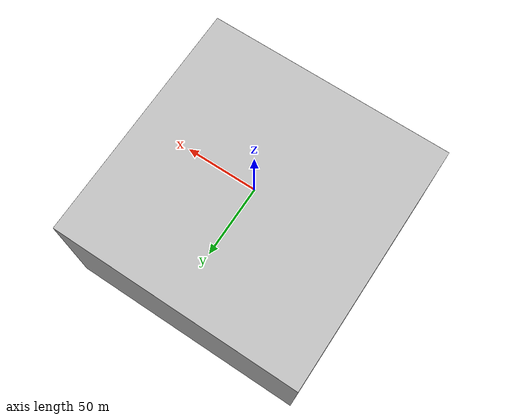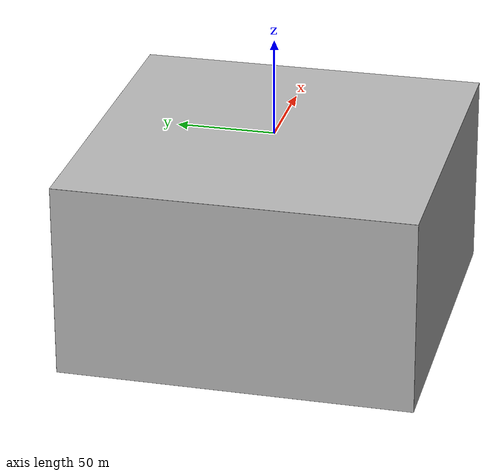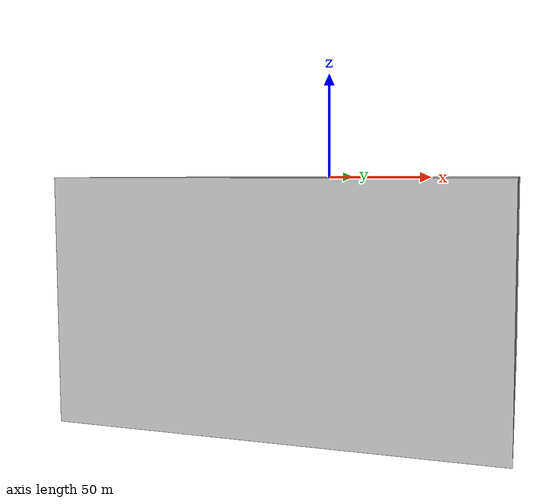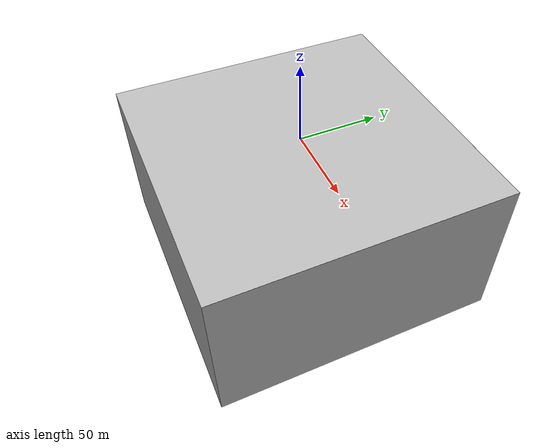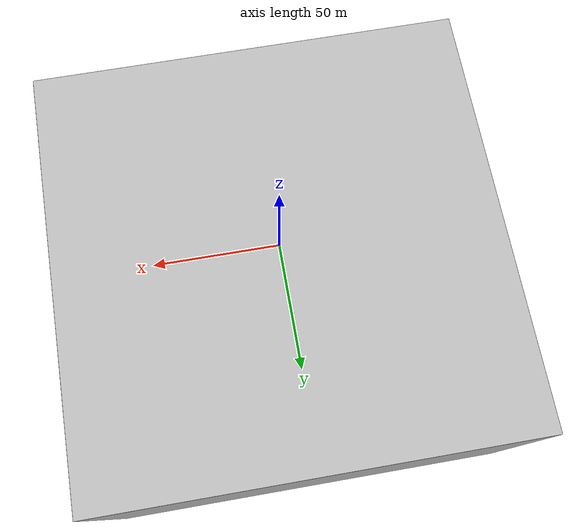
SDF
<?xml version="1.0" ?>
<!-- Ocean dimensions = 180 x 180 x 100 (depth rating = 100m) -->
<sdf version="1.5">
  <model name="auv_rl_ocean">
    <static>true</static>
    <link name="auv_rl_ocean">
        <visual name="surface">
            <pose>0 0 0 0 0 0</pose>
            <cast_shadows>false</cast_shadows>
            <geometry>
                <box>
                    <size>180 180 0.1</size>
                </box>
            </geometry>
            <material>
                <script>
                    <uri>file://auv_rl_ocean/materials/scripts/water.material</uri>
                    <name>auv_rl/StaticDeepWater</name>
                </script>
            </material>
        </visual>

        <visual name="bottom">
        <pose>0 0 -100.0 0 0 0</pose>
        <geometry>
          <box>
            <size>180 180 0.1</size>
          </box>
        </geometry>
        <material>
          <script>
            <uri>file://auv_rl_ocean/materials/scripts/water.material</uri>
            <name>auv_rl/SeaWall</name>
          </script>
        </material>
      </visual>

      <visual name="north_wall">
        <pose>0 90 -50.0 0 0 0</pose>
        <geometry>
          <box>
            <size>180 0.1 100</size>
          </box>
        </geometry>
        <material>
          <script>
            <uri>file://auv_rl_ocean/materials/scripts/water.material</uri>
            <name>auv_rl/SeaWall</name>
          </script>
        </material>
      </visual>

      <visual name="south_wall">
        <pose>0 -90 -50.0 0 0 0</pose>
        <geometry>
          <box>
            <size>180 0.1 100</size>
          </box>
        </geometry>
        <material>
          <script>
            <uri>file://auv_rl_ocean/materials/scripts/water.material</uri>
            <name>auv_rl/SeaWall</name>
          </script>
        </material>
      </visual>

      <visual name="east_wall">
        <pose>90 0 -50.0 0 0 0</pose>
        <geometry>
          <box>
            <size>0.1 180 100</size>
          </box>
        </geometry>
        <material>
          <script>
            <uri>file://auv_rl_ocean/materials/scripts/water.material</uri>
            <name>auv_rl/SeaWall</name>
          </script>
        </material>
      </visual>

      <visual name="west_wall">
        <pose>-90 0 -50.0 0 0 0</pose>
        <geometry>
          <box>
            <size>0.1 180 100</size>
          </box>
        </geometry>
        <material>
          <script>
            <uri>file://auv_rl_ocean/materials/scripts/water.material</uri>
            <name>auv_rl/SeaWall</name>
          </script>
        </material>
      </visual>
    </link>
  </model>
</sdf>
